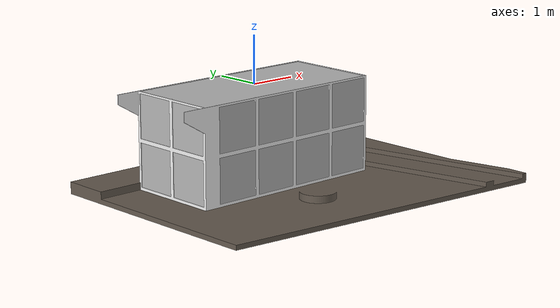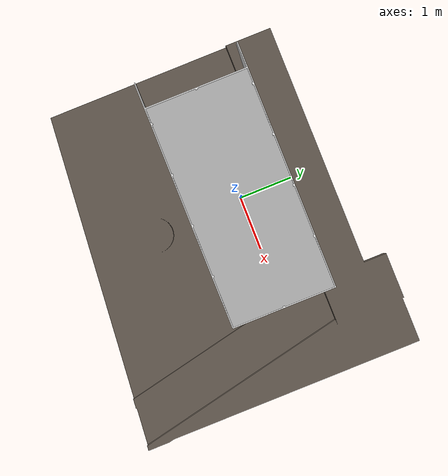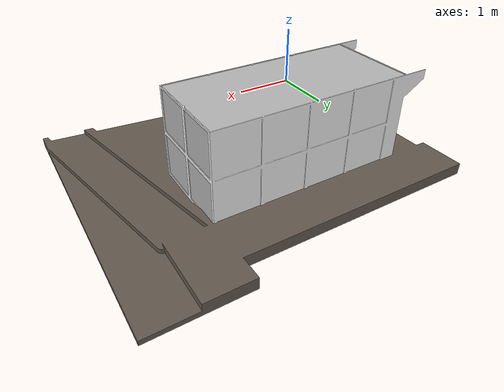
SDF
<?xml version="1.0" ?>
<sdf version="1.4">
  <world name="GRMI pool">
    <scene>
      <ambient>0.01 0.01 0.01 1.0</ambient>
      <sky>
        <clouds>
          <speed>12</speed>
        </clouds>
      </sky>
      <shadows>1</shadows>
      <fog>
        <color>0.1 0.2 0.3 1.0</color>
        <type>linear</type>
        <density>0.1</density>
        <start>10</start>
        <end>40</end>
      </fog>
    </scene>

    <spherical_coordinates>
      <latitude_deg>40.439421</latitude_deg>
      <longitude_deg>-3.688122</longitude_deg>
    </spherical_coordinates>

    <!-- Global light source -->
    <light type="directional" name="sun_diffuse_1">
      <pose>-200 -200 100 0 0 0</pose>
      <diffuse>0.6 0.6 0.6 1</diffuse>
      <specular>0 0 0 1</specular>
      <direction>-0.3 -0.3 -1</direction>
      <cast_shadows>true</cast_shadows>
    </light>

    <light type="directional" name="sun_diffuse_2">
      <pose>-100 50 200 0 0 0</pose>
      <diffuse>0.6 0.6 0.6 1</diffuse>
      <specular>0 0 0 1</specular>
      <direction>-0.3 -0.3 -1</direction>
      <cast_shadows>true</cast_shadows>
    </light>

    <light type="directional" name="sun_diffuse_3">
      <pose>-150 -130 50 0 0 0</pose>
      <diffuse>0.6 0.6 0.6 1</diffuse>
      <specular>0.2 0.2 0.2 1</specular>
      <direction>0.5 0.5 -1</direction>
      <cast_shadows>true</cast_shadows>
    </light>

    <!-- Seabed -->
    <include>
      <uri>model://GRMI_pool_seabed</uri>
      <pose>0 0 0 0 0 0</pose>
    </include>

    <!-- Pool -->
    <include>
      <uri>model://GRMI_pool</uri>
      <pose>0 0 0 0 0 0</pose>
    </include>

    <!-- Underwater currents -->
    <plugin name="underwater_current_plugin" filename="libuuv_underwater_current_ros_plugin.so">
      <namespace>hydrodynamics</namespace>
      <constant_current>
        <topic>current_velocity</topic>
        <velocity>
          <mean>0</mean>
          <min>0</min>
          <max>5</max>
          <mu>0.0</mu>
          <noiseAmp>0.0</noiseAmp>
        </velocity>

        <horizontal_angle>
          <mean>0</mean>
          <min>-3.141592653589793238</min>
          <max>3.141592653589793238</max>
          <mu>0.0</mu>
          <noiseAmp>0.0</noiseAmp>
        </horizontal_angle>

        <vertical_angle>
          <mean>0</mean>
          <min>-3.141592653589793238</min>
          <max>3.141592653589793238</max>
          <mu>0.0</mu>
          <noiseAmp>0.0</noiseAmp>
        </vertical_angle>
      </constant_current>
    </plugin>

    <plugin name="sc_interface" filename="libuuv_sc_ros_interface_plugin.so"/>

    <gui fullscreen='0'>
      <camera name='user_camera'>
        <pose frame=''>0 -5 2 0 0.1 1.57</pose>
        <view_controller>orbit</view_controller>
        <projection_type>perspective</projection_type>
      </camera>
    </gui>
  </world>
</sdf>

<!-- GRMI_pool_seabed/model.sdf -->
<sdf version="1.5">
  <model name="GRMI_pool_seabed">
    <static>true</static>
    <link name="seabed">
      <collision name="seabed">
        <pose>0 0 -2.10 0 0 0</pose>
        <geometry>
          <mesh>
            <uri>model://GRMI_pool_seabed/meshes/suelo.dae</uri>
            <scale>1.0 1.0 1.0</scale>
          </mesh>
        </geometry>
      </collision>

      <visual name="seabed">
        <cast_shadows>true</cast_shadows>
        <pose>0 0 -2.10 0 0 0</pose>
        <geometry>
          <mesh>
            <uri>model://GRMI_pool_seabed/meshes/suelo.dae</uri>
            <scale>1.0 1.0 1.0</scale>
          </mesh>
        </geometry>
      </visual>
    </link>

    <link name="water_link">
      <visual name="surface">
        <pose>0 0 0 0 0 0</pose>
        <cast_shadows>false</cast_shadows>
        <geometry>
          <box>
            <size>4.3 2 0.01</size>
          </box>
        </geometry>
        <material>
          <script>
            <uri>file://Media/materials/scripts/water.material</uri>
            <name>UUVSimulator/StaticWater</name>
          </script>
        </material>
      </visual>

      <visual name="bottom">
        <pose>0 0 -2.0 0 0 0</pose>
        <cast_shadows>false</cast_shadows>
        <geometry>
          <box>
            <size>4.3 2 0.01</size>
          </box>
        </geometry>
        <material>
          <script>
            <uri>file://Media/materials/scripts/water.material</uri>
            <name>UUVSimulator/StaticWater</name>
          </script>
        </material>
      </visual>

      <visual name="north_wall">
        <pose>0 0.98 -1.0 0 0 0</pose>
        <cast_shadows>false</cast_shadows>
        <geometry>
          <box>
            <size>4.3 0.01 2.0</size>
          </box>
        </geometry>
        <material>
          <script>
            <uri>file://Media/materials/scripts/water.material</uri>
            <name>UUVSimulator/StaticWater</name>
          </script>
        </material>
      </visual>

      <visual name="south_wall">
        <pose>0 -1 -1 0 0 0</pose>
        <cast_shadows>false</cast_shadows>
        <geometry>
          <box>
            <size>4.3 0.01 2.0</size>
          </box>
        </geometry>
        <material>
          <script>
            <uri>file://Media/materials/scripts/water.material</uri>
            <name>UUVSimulator/StaticWater</name>
          </script>
        </material>
      </visual>

      <visual name="east_wall">
        <pose>2.15 0 -1.0 0 0 0</pose>
        <cast_shadows>false</cast_shadows>
        <geometry>
          <box>
            <size>0.01 2 2</size>
          </box>
        </geometry>
        <material>
          <script>
            <uri>file://Media/materials/scripts/water.material</uri>
            <name>UUVSimulator/StaticWater</name>
          </script>
        </material>
      </visual>

      <visual name="west_wall">
        <pose>-2.15 0 -1.0 0 0 0</pose>
        <cast_shadows>false</cast_shadows>
        <geometry>
          <box>
            <size>0.01 2 2</size>
          </box>
        </geometry>
        <material>
          <script>
            <uri>file://Media/materials/scripts/water.material</uri>
            <name>UUVSimulator/StaticWater</name>
          </script>
        </material>
      </visual>
    </link>
  </model>
</sdf>

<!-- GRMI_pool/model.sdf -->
<sdf version="1.5">
  <model name="grmi_pool">
    <static>true</static>
    <link name="link">
      <collision name="grmi_pool">
        <pose>0 0 -2.0 0 0 0</pose>
        <geometry>
          <mesh>
            <uri>model://GRMI_pool/meshes/GRMI_pool_collision.dae</uri>
            <scale>1.0 1.0 1.0</scale>
          </mesh>
        </geometry>
      </collision>

      <visual name="grmi_pool">
        <cast_shadows>true</cast_shadows>
        <pose>0 0 -2.0 0 0 0</pose>
        <geometry>
          <mesh>
            <uri>model://GRMI_pool/meshes/GRMI_pool.dae</uri>
            <scale>1.0 1.0 1.0</scale>
          </mesh>
        </geometry>
      </visual>
    </link>
  </model>
</sdf>
